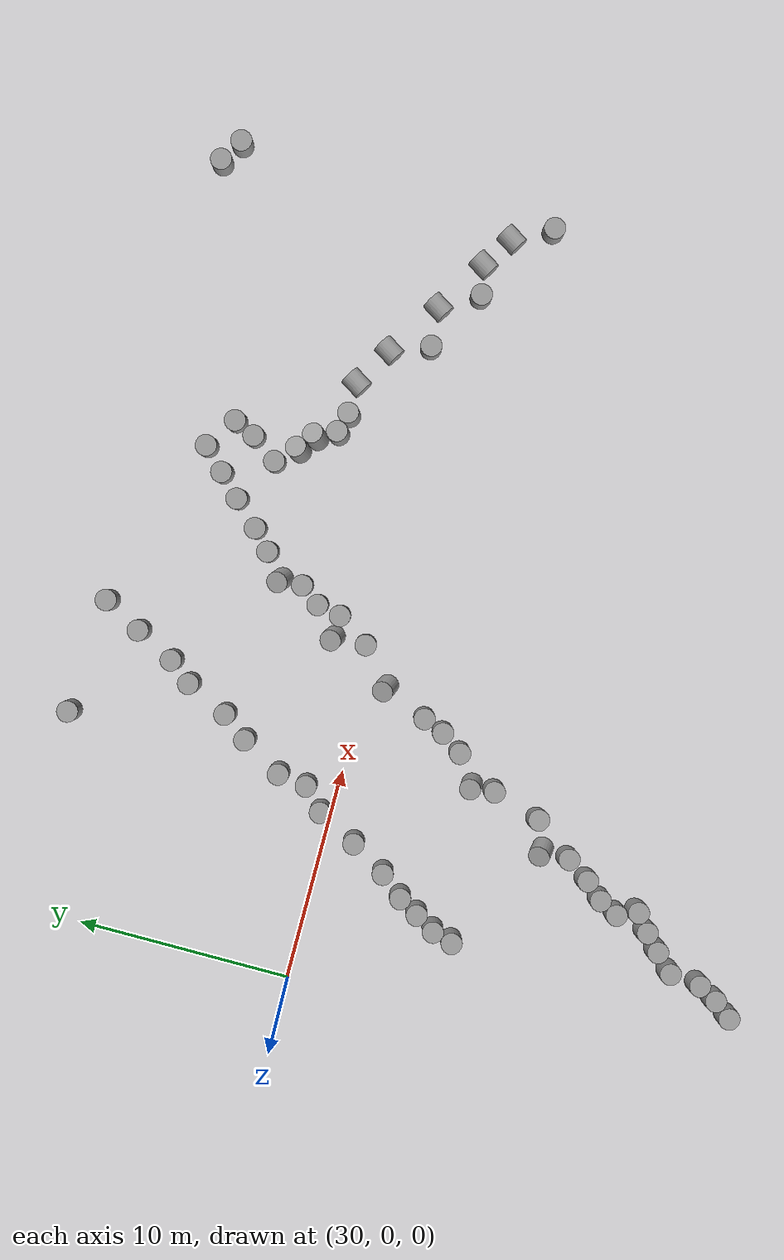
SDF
<sdf version="1.7">
 <world name="default">
  <model name="unit_cylinder_85_clone_244_clone_407">
   <pose>65.9083 12.7491 0.487016 0.000481 -0.001828 0.001633</pose>
   <link name="link">
    <inertial>
     <mass>1</mass>
     <inertia><ixx>0.145833</ixx><ixy>0</ixy><ixz>0</ixz><iyy>0.145833</iyy><iyz>0</iyz><izz>0.125</izz></inertia>
    </inertial>
    <collision name="collision">
     <geometry><cylinder><radius>0.5</radius><length>1</length></cylinder></geometry>
    </collision>
    <visual name="visual">
     <geometry><cylinder><radius>0.5</radius><length>1</length></cylinder></geometry>
     <material>
      <script><name>Gazebo/Grey</name><uri>file://media/materials/scripts/gazebo.material</uri></script>
     </material>
    </visual>
   </link>
  </model>
  <model name="unit_cylinder_85_clone_244_clone_408">
   <pose>66.9709 12.0697 0.483868 -0.001847 0.002099 -0.006346</pose>
   <link name="link">
    <inertial>
     <mass>1</mass>
     <inertia><ixx>0.145833</ixx><ixy>0</ixy><ixz>0</ixz><iyy>0.145833</iyy><iyz>0</iyz><izz>0.125</izz></inertia>
    </inertial>
    <collision name="collision">
     <geometry><cylinder><radius>0.5</radius><length>1</length></cylinder></geometry>
    </collision>
    <visual name="visual">
     <geometry><cylinder><radius>0.5</radius><length>1</length></cylinder></geometry>
     <material>
      <script><name>Gazebo/Grey</name><uri>file://media/materials/scripts/gazebo.material</uri></script>
     </material>
    </visual>
   </link>
  </model>
  <model name="unit_cylinder_85_clone_244_clone_454">
   <pose>47.9038 4.05048 0.452221 0.003339 -9.4e-05 0.005321</pose>
   <link name="link">
    <inertial>
     <mass>1</mass>
     <inertia><ixx>0.145833</ixx><ixy>0</ixy><ixz>0</ixz><iyy>0.145833</iyy><iyz>0</iyz><izz>0.125</izz></inertia>
    </inertial>
    <collision name="collision">
     <geometry><cylinder><radius>0.5</radius><length>1</length></cylinder></geometry>
    </collision>
    <visual name="visual">
     <geometry><cylinder><radius>0.5</radius><length>1</length></cylinder></geometry>
     <material>
      <script><name>Gazebo/Grey</name><uri>file://media/materials/scripts/gazebo.material</uri></script>
     </material>
    </visual>
   </link>
  </model>
  <model name="unit_cylinder_85_clone_244_clone_455">
   <pose>47.8735 5.1312 0.382959 -0.164141 -0.279852 -0.005992</pose>
   <link name="link">
    <inertial>
     <mass>1</mass>
     <inertia><ixx>0.145833</ixx><ixy>0</ixy><ixz>0</ixz><iyy>0.145833</iyy><iyz>0</iyz><izz>0.125</izz></inertia>
    </inertial>
    <collision name="collision">
     <geometry><cylinder><radius>0.5</radius><length>1</length></cylinder></geometry>
    </collision>
    <visual name="visual">
     <geometry><cylinder><radius>0.5</radius><length>1</length></cylinder></geometry>
     <material>
      <script><name>Gazebo/Grey</name><uri>file://media/materials/scripts/gazebo.material</uri></script>
     </material>
    </visual>
   </link>
  </model>
  <model name="unit_cylinder_85_clone_244_clone_456">
   <pose>48.9968 6.0021 0.45274 -0.003399 -0.00559 0.000164</pose>
   <link name="link">
    <inertial>
     <mass>1</mass>
     <inertia><ixx>0.145833</ixx><ixy>0</ixy><ixz>0</ixz><iyy>0.145833</iyy><iyz>0</iyz><izz>0.125</izz></inertia>
    </inertial>
    <collision name="collision">
     <geometry><cylinder><radius>0.5</radius><length>1</length></cylinder></geometry>
    </collision>
    <visual name="visual">
     <geometry><cylinder><radius>0.5</radius><length>1</length></cylinder></geometry>
     <material>
      <script><name>Gazebo/Grey</name><uri>file://media/materials/scripts/gazebo.material</uri></script>
     </material>
    </visual>
   </link>
  </model>
  <model name="unit_cylinder_85_clone_244_clone_457">
   <pose>49.8926 6.83286 0.455228 -0.00395 -0.006941 -0.003318</pose>
   <link name="link">
    <inertial>
     <mass>1</mass>
     <inertia><ixx>0.145833</ixx><ixy>0</ixy><ixz>0</ixz><iyy>0.145833</iyy><iyz>0</iyz><izz>0.125</izz></inertia>
    </inertial>
    <collision name="collision">
     <geometry><cylinder><radius>0.5</radius><length>1</length></cylinder></geometry>
    </collision>
    <visual name="visual">
     <geometry><cylinder><radius>0.5</radius><length>1</length></cylinder></geometry>
     <material>
      <script><name>Gazebo/Grey</name><uri>file://media/materials/scripts/gazebo.material</uri></script>
     </material>
    </visual>
   </link>
  </model>
  <model name="unit_cylinder_85_clone_244_clone_458">
   <pose>50.9948 8.00276 0.458138 -0.004375 -0.007622 0.000537</pose>
   <link name="link">
    <inertial>
     <mass>1</mass>
     <inertia><ixx>0.145833</ixx><ixy>0</ixy><ixz>0</ixz><iyy>0.145833</iyy><iyz>0</iyz><izz>0.125</izz></inertia>
    </inertial>
    <collision name="collision">
     <geometry><cylinder><radius>0.5</radius><length>1</length></cylinder></geometry>
    </collision>
    <visual name="visual">
     <geometry><cylinder><radius>0.5</radius><length>1</length></cylinder></geometry>
     <material>
      <script><name>Gazebo/Grey</name><uri>file://media/materials/scripts/gazebo.material</uri></script>
     </material>
    </visual>
   </link>
  </model>
  <model name="unit_cylinder_85_clone_244_clone_459">
   <pose>51.9946 9.00133 0.461972 -0.002354 -0.007167 0.001035</pose>
   <link name="link">
    <inertial>
     <mass>1</mass>
     <inertia><ixx>0.145833</ixx><ixy>0</ixy><ixz>0</ixz><iyy>0.145833</iyy><iyz>0</iyz><izz>0.125</izz></inertia>
    </inertial>
    <collision name="collision">
     <geometry><cylinder><radius>0.5</radius><length>1</length></cylinder></geometry>
    </collision>
    <visual name="visual">
     <geometry><cylinder><radius>0.5</radius><length>1</length></cylinder></geometry>
     <material>
      <script><name>Gazebo/Grey</name><uri>file://media/materials/scripts/gazebo.material</uri></script>
     </material>
    </visual>
   </link>
  </model>
  <model name="unit_cylinder_85_clone_244_clone_460">
   <pose>52.9971 9.9992 0.466906 0.001811 -0.00526 0.000443</pose>
   <link name="link">
    <inertial>
     <mass>1</mass>
     <inertia><ixx>0.145833</ixx><ixy>0</ixy><ixz>0</ixz><iyy>0.145833</iyy><iyz>0</iyz><izz>0.125</izz></inertia>
    </inertial>
    <collision name="collision">
     <geometry><cylinder><radius>0.5</radius><length>1</length></cylinder></geometry>
    </collision>
    <visual name="visual">
     <geometry><cylinder><radius>0.5</radius><length>1</length></cylinder></geometry>
     <material>
      <script><name>Gazebo/Grey</name><uri>file://media/materials/scripts/gazebo.material</uri></script>
     </material>
    </visual>
   </link>
  </model>
  <model name="unit_cylinder_85_clone_244_clone_461">
   <pose>54.4584 9.00276 0.478846 -0.004645 -0.007311 0.000438</pose>
   <link name="link">
    <inertial>
     <mass>1</mass>
     <inertia><ixx>0.145833</ixx><ixy>0</ixy><ixz>0</ixz><iyy>0.145833</iyy><iyz>0</iyz><izz>0.125</izz></inertia>
    </inertial>
    <collision name="collision">
     <geometry><cylinder><radius>0.5</radius><length>1</length></cylinder></geometry>
    </collision>
    <visual name="visual">
     <geometry><cylinder><radius>0.5</radius><length>1</length></cylinder></geometry>
     <material>
      <script><name>Gazebo/Grey</name><uri>file://media/materials/scripts/gazebo.material</uri></script>
     </material>
    </visual>
   </link>
  </model>
  <model name="unit_cylinder_85_clone_244_clone_462">
   <pose>53.9957 8.00276 0.480105 -0.004646 -0.00731 0.000452</pose>
   <link name="link">
    <inertial>
     <mass>1</mass>
     <inertia><ixx>0.145833</ixx><ixy>0</ixy><ixz>0</ixz><iyy>0.145833</iyy><iyz>0</iyz><izz>0.125</izz></inertia>
    </inertial>
    <collision name="collision">
     <geometry><cylinder><radius>0.5</radius><length>1</length></cylinder></geometry>
    </collision>
    <visual name="visual">
     <geometry><cylinder><radius>0.5</radius><length>1</length></cylinder></geometry>
     <material>
      <script><name>Gazebo/Grey</name><uri>file://media/materials/scripts/gazebo.material</uri></script>
     </material>
    </visual>
   </link>
  </model>
  <model name="unit_cylinder_85_clone_244_clone_463">
   <pose>53.1079 6.77764 0.479298 -0.004644 -0.007309 0.000466</pose>
   <link name="link">
    <inertial>
     <mass>1</mass>
     <inertia><ixx>0.145833</ixx><ixy>0</ixy><ixz>0</ixz><iyy>0.145833</iyy><iyz>0</iyz><izz>0.125</izz></inertia>
    </inertial>
    <collision name="collision">
     <geometry><cylinder><radius>0.5</radius><length>1</length></cylinder></geometry>
    </collision>
    <visual name="visual">
     <geometry><cylinder><radius>0.5</radius><length>1</length></cylinder></geometry>
     <material>
      <script><name>Gazebo/Grey</name><uri>file://media/materials/scripts/gazebo.material</uri></script>
     </material>
    </visual>
   </link>
  </model>
  <model name="unit_cylinder_85_clone_244_clone_464">
   <pose>53.9431 5.88053 0.37976 -0.269112 0.162411 -0.013311</pose>
   <link name="link">
    <inertial>
     <mass>1</mass>
     <inertia><ixx>0.145833</ixx><ixy>0</ixy><ixz>0</ixz><iyy>0.145833</iyy><iyz>0</iyz><izz>0.125</izz></inertia>
    </inertial>
    <collision name="collision">
     <geometry><cylinder><radius>0.5</radius><length>1</length></cylinder></geometry>
    </collision>
    <visual name="visual">
     <geometry><cylinder><radius>0.5</radius><length>1</length></cylinder></geometry>
     <material>
      <script><name>Gazebo/Grey</name><uri>file://media/materials/scripts/gazebo.material</uri></script>
     </material>
    </visual>
   </link>
  </model>
  <model name="unit_cylinder_85_clone_244_clone_465">
   <pose>54.7278 5.26066 0.400099 -0.286862 0.254443 0.140619</pose>
   <link name="link">
    <inertial>
     <mass>1</mass>
     <inertia><ixx>0.145833</ixx><ixy>0</ixy><ixz>0</ixz><iyy>0.145833</iyy><iyz>0</iyz><izz>0.125</izz></inertia>
    </inertial>
    <collision name="collision">
     <geometry><cylinder><radius>0.5</radius><length>1</length></cylinder></geometry>
    </collision>
    <visual name="visual">
     <geometry><cylinder><radius>0.5</radius><length>1</length></cylinder></geometry>
     <material>
      <script><name>Gazebo/Grey</name><uri>file://media/materials/scripts/gazebo.material</uri></script>
     </material>
    </visual>
   </link>
  </model>
  <model name="unit_cylinder_85_clone_244_clone_466">
   <pose>55.1525 4.29108 0.516773 -0.077315 0.091068 0.288524</pose>
   <link name="link">
    <inertial>
     <mass>1</mass>
     <inertia><ixx>0.145833</ixx><ixy>0</ixy><ixz>0</ixz><iyy>0.145833</iyy><iyz>0</iyz><izz>0.125</izz></inertia>
    </inertial>
    <collision name="collision">
     <geometry><cylinder><radius>0.5</radius><length>1</length></cylinder></geometry>
    </collision>
    <visual name="visual">
     <geometry><cylinder><radius>0.5</radius><length>1</length></cylinder></geometry>
     <material>
      <script><name>Gazebo/Grey</name><uri>file://media/materials/scripts/gazebo.material</uri></script>
     </material>
    </visual>
   </link>
  </model>
  <model name="unit_cylinder_85_clone_244_clone_467">
   <pose>56.114 4.01838 0.481314 -0.098125 0.068091 0.02808</pose>
   <link name="link">
    <inertial>
     <mass>1</mass>
     <inertia><ixx>0.145833</ixx><ixy>0</ixy><ixz>0</ixz><iyy>0.145833</iyy><iyz>0</iyz><izz>0.125</izz></inertia>
    </inertial>
    <collision name="collision">
     <geometry><cylinder><radius>0.5</radius><length>1</length></cylinder></geometry>
    </collision>
    <visual name="visual">
     <geometry><cylinder><radius>0.5</radius><length>1</length></cylinder></geometry>
     <material>
      <script><name>Gazebo/Grey</name><uri>file://media/materials/scripts/gazebo.material</uri></script>
     </material>
    </visual>
   </link>
  </model>
  <model name="unit_cylinder_85_clone_244_clone_468">
   <pose>57.6697 4.0778 0.25 -1.5708 0.565712 -0.561488</pose>
   <link name="link">
    <inertial>
     <mass>1</mass>
     <inertia><ixx>0.145833</ixx><ixy>0</ixy><ixz>0</ixz><iyy>0.145833</iyy><iyz>0</iyz><izz>0.125</izz></inertia>
    </inertial>
    <collision name="collision">
     <geometry><cylinder><radius>0.5</radius><length>1</length></cylinder></geometry>
    </collision>
    <visual name="visual">
     <geometry><cylinder><radius>0.5</radius><length>1</length></cylinder></geometry>
     <material>
      <script><name>Gazebo/Grey</name><uri>file://media/materials/scripts/gazebo.material</uri></script>
     </material>
    </visual>
   </link>
  </model>
  <model name="unit_cylinder_85_clone_244_clone_474">
   <pose>44.907 12.6078 0.457132 0.00677 0.009632 -0.001242</pose>
   <link name="link">
    <inertial>
     <mass>1</mass>
     <inertia><ixx>0.145833</ixx><ixy>0</ixy><ixz>0</ixz><iyy>0.145833</iyy><iyz>0</iyz><izz>0.125</izz></inertia>
    </inertial>
    <collision name="collision">
     <geometry><cylinder><radius>0.5</radius><length>1</length></cylinder></geometry>
    </collision>
    <visual name="visual">
     <geometry><cylinder><radius>0.5</radius><length>1</length></cylinder></geometry>
     <material>
      <script><name>Gazebo/Grey</name><uri>file://media/materials/scripts/gazebo.material</uri></script>
     </material>
    </visual>
   </link>
  </model>
  <model name="unit_cylinder_85_clone_244_clone_475">
   <pose>59.5076 3.00165 0.25 -1.5708 0.56109 -0.556163</pose>
   <link name="link">
    <inertial>
     <mass>1</mass>
     <inertia><ixx>0.145833</ixx><ixy>0</ixy><ixz>0</ixz><iyy>0.145833</iyy><iyz>0</iyz><izz>0.125</izz></inertia>
    </inertial>
    <collision name="collision">
     <geometry><cylinder><radius>0.5</radius><length>1</length></cylinder></geometry>
    </collision>
    <visual name="visual">
     <geometry><cylinder><radius>0.5</radius><length>1</length></cylinder></geometry>
     <material>
      <script><name>Gazebo/Grey</name><uri>file://media/materials/scripts/gazebo.material</uri></script>
     </material>
    </visual>
   </link>
  </model>
  <model name="unit_cylinder_85_clone_244_clone_476">
   <pose>60.1134 1.16187 0.474576 0.000852 0.000466 -0.024107</pose>
   <link name="link">
    <inertial>
     <mass>1</mass>
     <inertia><ixx>0.145833</ixx><ixy>0</ixy><ixz>0</ixz><iyy>0.145833</iyy><iyz>0</iyz><izz>0.125</izz></inertia>
    </inertial>
    <collision name="collision">
     <geometry><cylinder><radius>0.5</radius><length>1</length></cylinder></geometry>
    </collision>
    <visual name="visual">
     <geometry><cylinder><radius>0.5</radius><length>1</length></cylinder></geometry>
     <material>
      <script><name>Gazebo/Grey</name><uri>file://media/materials/scripts/gazebo.material</uri></script>
     </material>
    </visual>
   </link>
  </model>
  <model name="unit_cylinder_85_clone_244_clone_477">
   <pose>62.0484 1.31526 0.25 -1.5708 0.562658 -0.559348</pose>
   <link name="link">
    <inertial>
     <mass>1</mass>
     <inertia><ixx>0.145833</ixx><ixy>0</ixy><ixz>0</ixz><iyy>0.145833</iyy><iyz>0</iyz><izz>0.125</izz></inertia>
    </inertial>
    <collision name="collision">
     <geometry><cylinder><radius>0.5</radius><length>1</length></cylinder></geometry>
    </collision>
    <visual name="visual">
     <geometry><cylinder><radius>0.5</radius><length>1</length></cylinder></geometry>
     <material>
      <script><name>Gazebo/Grey</name><uri>file://media/materials/scripts/gazebo.material</uri></script>
     </material>
    </visual>
   </link>
  </model>
  <model name="unit_cylinder_85_clone_244_clone_478">
   <pose>63.0003 -0.461854 0.471903 0.000855 0.000439 0.00044</pose>
   <link name="link">
    <inertial>
     <mass>1</mass>
     <inertia><ixx>0.145833</ixx><ixy>0</ixy><ixz>0</ixz><iyy>0.145833</iyy><iyz>0</iyz><izz>0.125</izz></inertia>
    </inertial>
    <collision name="collision">
     <geometry><cylinder><radius>0.5</radius><length>1</length></cylinder></geometry>
    </collision>
    <visual name="visual">
     <geometry><cylinder><radius>0.5</radius><length>1</length></cylinder></geometry>
     <material>
      <script><name>Gazebo/Grey</name><uri>file://media/materials/scripts/gazebo.material</uri></script>
     </material>
    </visual>
   </link>
  </model>
  <model name="unit_cylinder_85_clone_244_clone_479">
   <pose>64.5029 -0.198859 0.25 -1.5708 0.562659 -0.559427</pose>
   <link name="link">
    <inertial>
     <mass>1</mass>
     <inertia><ixx>0.145833</ixx><ixy>0</ixy><ixz>0</ixz><iyy>0.145833</iyy><iyz>0</iyz><izz>0.125</izz></inertia>
    </inertial>
    <collision name="collision">
     <geometry><cylinder><radius>0.5</radius><length>1</length></cylinder></geometry>
    </collision>
    <visual name="visual">
     <geometry><cylinder><radius>0.5</radius><length>1</length></cylinder></geometry>
     <material>
      <script><name>Gazebo/Grey</name><uri>file://media/materials/scripts/gazebo.material</uri></script>
     </material>
    </visual>
   </link>
  </model>
  <model name="unit_cylinder_85_clone_244_clone_480">
   <pose>65.9843 -1.1571 0.25 -1.5708 0.562156 -0.558519</pose>
   <link name="link">
    <inertial>
     <mass>1</mass>
     <inertia><ixx>0.145833</ixx><ixy>0</ixy><ixz>0</ixz><iyy>0.145833</iyy><iyz>0</iyz><izz>0.125</izz></inertia>
    </inertial>
    <collision name="collision">
     <geometry><cylinder><radius>0.5</radius><length>1</length></cylinder></geometry>
    </collision>
    <visual name="visual">
     <geometry><cylinder><radius>0.5</radius><length>1</length></cylinder></geometry>
     <material>
      <script><name>Gazebo/Grey</name><uri>file://media/materials/scripts/gazebo.material</uri></script>
     </material>
    </visual>
   </link>
  </model>
  <model name="unit_cylinder_85_clone_244_clone_481">
   <pose>66.8227 -2.92542 0.468089 0.000859 0.000442 0.002127</pose>
   <link name="link">
    <inertial>
     <mass>1</mass>
     <inertia><ixx>0.145833</ixx><ixy>0</ixy><ixz>0</ixz><iyy>0.145833</iyy><iyz>0</iyz><izz>0.125</izz></inertia>
    </inertial>
    <collision name="collision">
     <geometry><cylinder><radius>0.5</radius><length>1</length></cylinder></geometry>
    </collision>
    <visual name="visual">
     <geometry><cylinder><radius>0.5</radius><length>1</length></cylinder></geometry>
     <material>
      <script><name>Gazebo/Grey</name><uri>file://media/materials/scripts/gazebo.material</uri></script>
     </material>
    </visual>
   </link>
  </model>
  <model name="unit_cylinder_85_clone_244_clone_1080">
   <pose>40.2632 -9.29285 0.475792 0.023351 0.04761 0.001771</pose>
   <link name="link">
    <inertial>
     <mass>1</mass>
     <inertia><ixx>0.145833</ixx><ixy>0</ixy><ixz>0</ixz><iyy>0.145833</iyy><iyz>0</iyz><izz>0.125</izz></inertia>
    </inertial>
    <collision name="collision">
     <geometry><cylinder><radius>0.5</radius><length>1</length></cylinder></geometry>
    </collision>
    <visual name="visual">
     <geometry><cylinder><radius>0.5</radius><length>1</length></cylinder></geometry>
     <material>
      <script><name>Gazebo/Grey</name><uri>file://media/materials/scripts/gazebo.material</uri></script>
     </material>
    </visual>
   </link>
  </model>
  <model name="unit_cylinder_85_clone_244_clone_1081">
   <pose>38.8842 -11.1155 0.486323 0.017733 0.027566 0.000849</pose>
   <link name="link">
    <inertial>
     <mass>1</mass>
     <inertia><ixx>0.145833</ixx><ixy>0</ixy><ixz>0</ixz><iyy>0.145833</iyy><iyz>0</iyz><izz>0.125</izz></inertia>
    </inertial>
    <collision name="collision">
     <geometry><cylinder><radius>0.5</radius><length>1</length></cylinder></geometry>
    </collision>
    <visual name="visual">
     <geometry><cylinder><radius>0.5</radius><length>1</length></cylinder></geometry>
     <material>
      <script><name>Gazebo/Grey</name><uri>file://media/materials/scripts/gazebo.material</uri></script>
     </material>
    </visual>
   </link>
  </model>
  <model name="unit_cylinder_85_clone_244_clone_1082">
   <pose>38.1433 -12.1995 0.487555 0.017732 0.02757 0.000865</pose>
   <link name="link">
    <inertial>
     <mass>1</mass>
     <inertia><ixx>0.145833</ixx><ixy>0</ixy><ixz>0</ixz><iyy>0.145833</iyy><iyz>0</iyz><izz>0.125</izz></inertia>
    </inertial>
    <collision name="collision">
     <geometry><cylinder><radius>0.5</radius><length>1</length></cylinder></geometry>
    </collision>
    <visual name="visual">
     <geometry><cylinder><radius>0.5</radius><length>1</length></cylinder></geometry>
     <material>
      <script><name>Gazebo/Grey</name><uri>file://media/materials/scripts/gazebo.material</uri></script>
     </material>
    </visual>
   </link>
  </model>
  <model name="unit_cylinder_85_clone_244_clone_1083">
   <pose>37.4378 -13.0048 0.488001 0.002602 -0.000362 -0.00181</pose>
   <link name="link">
    <inertial>
     <mass>1</mass>
     <inertia><ixx>0.145833</ixx><ixy>0</ixy><ixz>0</ixz><iyy>0.145833</iyy><iyz>0</iyz><izz>0.125</izz></inertia>
    </inertial>
    <collision name="collision">
     <geometry><cylinder><radius>0.5</radius><length>1</length></cylinder></geometry>
    </collision>
    <visual name="visual">
     <geometry><cylinder><radius>0.5</radius><length>1</length></cylinder></geometry>
     <material>
      <script><name>Gazebo/Grey</name><uri>file://media/materials/scripts/gazebo.material</uri></script>
     </material>
    </visual>
   </link>
  </model>
  <model name="unit_cylinder_85_clone_244_clone_1084">
   <pose>36.9782 -13.8929 0.485522 0.002557 -0.000604 0.091987</pose>
   <link name="link">
    <inertial>
     <mass>1</mass>
     <inertia><ixx>0.145833</ixx><ixy>0</ixy><ixz>0</ixz><iyy>0.145833</iyy><iyz>0</iyz><izz>0.125</izz></inertia>
    </inertial>
    <collision name="collision">
     <geometry><cylinder><radius>0.5</radius><length>1</length></cylinder></geometry>
    </collision>
    <visual name="visual">
     <geometry><cylinder><radius>0.5</radius><length>1</length></cylinder></geometry>
     <material>
      <script><name>Gazebo/Grey</name><uri>file://media/materials/scripts/gazebo.material</uri></script>
     </material>
    </visual>
   </link>
  </model>
  <model name="unit_cylinder_85_clone_244_clone_1085">
   <pose>37.3354 -14.8531 0.4645 0.017261 0.023847 0.056393</pose>
   <link name="link">
    <inertial>
     <mass>1</mass>
     <inertia><ixx>0.145833</ixx><ixy>0</ixy><ixz>0</ixz><iyy>0.145833</iyy><iyz>0</iyz><izz>0.125</izz></inertia>
    </inertial>
    <collision name="collision">
     <geometry><cylinder><radius>0.5</radius><length>1</length></cylinder></geometry>
    </collision>
    <visual name="visual">
     <geometry><cylinder><radius>0.5</radius><length>1</length></cylinder></geometry>
     <material>
      <script><name>Gazebo/Grey</name><uri>file://media/materials/scripts/gazebo.material</uri></script>
     </material>
    </visual>
   </link>
  </model>
  <model name="unit_cylinder_85_clone_244_clone_1086">
   <pose>36.5434 -15.4775 0.473621 0.014527 0.029387 -0.111619</pose>
   <link name="link">
    <inertial>
     <mass>1</mass>
     <inertia><ixx>0.145833</ixx><ixy>0</ixy><ixz>0</ixz><iyy>0.145833</iyy><iyz>0</iyz><izz>0.125</izz></inertia>
    </inertial>
    <collision name="collision">
     <geometry><cylinder><radius>0.5</radius><length>1</length></cylinder></geometry>
    </collision>
    <visual name="visual">
     <geometry><cylinder><radius>0.5</radius><length>1</length></cylinder></geometry>
     <material>
      <script><name>Gazebo/Grey</name><uri>file://media/materials/scripts/gazebo.material</uri></script>
     </material>
    </visual>
   </link>
  </model>
  <model name="unit_cylinder_85_clone_244_clone_1087">
   <pose>35.8153 -16.1767 0.479152 0.002587 -0.000484 0.043993</pose>
   <link name="link">
    <inertial>
     <mass>1</mass>
     <inertia><ixx>0.145833</ixx><ixy>0</ixy><ixz>0</ixz><iyy>0.145833</iyy><iyz>0</iyz><izz>0.125</izz></inertia>
    </inertial>
    <collision name="collision">
     <geometry><cylinder><radius>0.5</radius><length>1</length></cylinder></geometry>
    </collision>
    <visual name="visual">
     <geometry><cylinder><radius>0.5</radius><length>1</length></cylinder></geometry>
     <material>
      <script><name>Gazebo/Grey</name><uri>file://media/materials/scripts/gazebo.material</uri></script>
     </material>
    </visual>
   </link>
  </model>
  <model name="unit_cylinder_85_clone_244_clone_1088">
   <pose>35.0001 -17.0015 0.476711 0.002591 -0.000384 0.000468</pose>
   <link name="link">
    <inertial>
     <mass>1</mass>
     <inertia><ixx>0.145833</ixx><ixy>0</ixy><ixz>0</ixz><iyy>0.145833</iyy><iyz>0</iyz><izz>0.125</izz></inertia>
    </inertial>
    <collision name="collision">
     <geometry><cylinder><radius>0.5</radius><length>1</length></cylinder></geometry>
    </collision>
    <visual name="visual">
     <geometry><cylinder><radius>0.5</radius><length>1</length></cylinder></geometry>
     <material>
      <script><name>Gazebo/Grey</name><uri>file://media/materials/scripts/gazebo.material</uri></script>
     </material>
    </visual>
   </link>
  </model>
  <model name="unit_cylinder_85_clone_244_clone_1089">
   <pose>34.8078 -18.4486 0.468875 0.017956 0.027423 0.008938</pose>
   <link name="link">
    <inertial>
     <mass>1</mass>
     <inertia><ixx>0.145833</ixx><ixy>0</ixy><ixz>0</ixz><iyy>0.145833</iyy><iyz>0</iyz><izz>0.125</izz></inertia>
    </inertial>
    <collision name="collision">
     <geometry><cylinder><radius>0.5</radius><length>1</length></cylinder></geometry>
    </collision>
    <visual name="visual">
     <geometry><cylinder><radius>0.5</radius><length>1</length></cylinder></geometry>
     <material>
      <script><name>Gazebo/Grey</name><uri>file://media/materials/scripts/gazebo.material</uri></script>
     </material>
    </visual>
   </link>
  </model>
  <model name="unit_cylinder_85_clone_244_clone_1090">
   <pose>34.3214 -19.3329 0.466628 0.019374 0.026437 0.061742</pose>
   <link name="link">
    <inertial>
     <mass>1</mass>
     <inertia><ixx>0.145833</ixx><ixy>0</ixy><ixz>0</ixz><iyy>0.145833</iyy><iyz>0</iyz><izz>0.125</izz></inertia>
    </inertial>
    <collision name="collision">
     <geometry><cylinder><radius>0.5</radius><length>1</length></cylinder></geometry>
    </collision>
    <visual name="visual">
     <geometry><cylinder><radius>0.5</radius><length>1</length></cylinder></geometry>
     <material>
      <script><name>Gazebo/Grey</name><uri>file://media/materials/scripts/gazebo.material</uri></script>
     </material>
    </visual>
   </link>
  </model>
  <model name="unit_cylinder_85_clone_244_clone_1091">
   <pose>33.7063 -20.1398 0.468057 0.002627 -0.000191 -0.055756</pose>
   <link name="link">
    <inertial>
     <mass>1</mass>
     <inertia><ixx>0.145833</ixx><ixy>0</ixy><ixz>0</ixz><iyy>0.145833</iyy><iyz>0</iyz><izz>0.125</izz></inertia>
    </inertial>
    <collision name="collision">
     <geometry><cylinder><radius>0.5</radius><length>1</length></cylinder></geometry>
    </collision>
    <visual name="visual">
     <geometry><cylinder><radius>0.5</radius><length>1</length></cylinder></geometry>
     <material>
      <script><name>Gazebo/Grey</name><uri>file://media/materials/scripts/gazebo.material</uri></script>
     </material>
    </visual>
   </link>
  </model>
  <model name="unit_cylinder_85_clone_244_clone_1091">
   <pose>33.7063 -20.1398 0.468057 0.002627 -0.000191 -0.055756</pose>
   <link name="link">
    <inertial>
     <mass>1</mass>
     <inertia><ixx>0.145833</ixx><ixy>0</ixy><ixz>0</ixz><iyy>0.145833</iyy><iyz>0</iyz><izz>0.125</izz></inertia>
    </inertial>
    <collision name="collision">
     <geometry><cylinder><radius>0.5</radius><length>1</length></cylinder></geometry>
    </collision>
    <visual name="visual">
     <geometry><cylinder><radius>0.5</radius><length>1</length></cylinder></geometry>
     <material>
      <script><name>Gazebo/Grey</name><uri>file://media/materials/scripts/gazebo.material</uri></script>
     </material>
    </visual>
   </link>
  </model>
  <model name="unit_cylinder_85_clone_244_clone_1106">
   <pose>38.8351 -9.85135 0.414549 -0.27302 -0.345187 0.152496</pose>
   <link name="link">
    <inertial>
     <mass>1</mass>
     <inertia><ixx>0.145833</ixx><ixy>0</ixy><ixz>0</ixz><iyy>0.145833</iyy><iyz>0</iyz><izz>0.125</izz></inertia>
    </inertial>
    <collision name="collision">
     <geometry><cylinder><radius>0.5</radius><length>1</length></cylinder></geometry>
    </collision>
    <visual name="visual">
     <geometry><cylinder><radius>0.5</radius><length>1</length></cylinder></geometry>
     <material>
      <script><name>Gazebo/Grey</name><uri>file://media/materials/scripts/gazebo.material</uri></script>
     </material>
    </visual>
   </link>
  </model>
  <model name="unit_cylinder_85_clone_244_clone_1107">
   <pose>41.001 -7.00061 0.451141 0.00117 0.001922 0.000501</pose>
   <link name="link">
    <inertial>
     <mass>1</mass>
     <inertia><ixx>0.145833</ixx><ixy>0</ixy><ixz>0</ixz><iyy>0.145833</iyy><iyz>0</iyz><izz>0.125</izz></inertia>
    </inertial>
    <collision name="collision">
     <geometry><cylinder><radius>0.5</radius><length>1</length></cylinder></geometry>
    </collision>
    <visual name="visual">
     <geometry><cylinder><radius>0.5</radius><length>1</length></cylinder></geometry>
     <material>
      <script><name>Gazebo/Grey</name><uri>file://media/materials/scripts/gazebo.material</uri></script>
     </material>
    </visual>
   </link>
  </model>
  <model name="unit_cylinder_85_clone_244_clone_1108">
   <pose>40.9135 -5.93648 0.351098 -0.125856 -0.193939 0.034779</pose>
   <link name="link">
    <inertial>
     <mass>1</mass>
     <inertia><ixx>0.145833</ixx><ixy>0</ixy><ixz>0</ixz><iyy>0.145833</iyy><iyz>0</iyz><izz>0.125</izz></inertia>
    </inertial>
    <collision name="collision">
     <geometry><cylinder><radius>0.5</radius><length>1</length></cylinder></geometry>
    </collision>
    <visual name="visual">
     <geometry><cylinder><radius>0.5</radius><length>1</length></cylinder></geometry>
     <material>
      <script><name>Gazebo/Grey</name><uri>file://media/materials/scripts/gazebo.material</uri></script>
     </material>
    </visual>
   </link>
  </model>
  <model name="unit_cylinder_85_clone_244_clone_1109">
   <pose>42.3027 -4.99729 0.451009 0.001063 0.001721 0.000446</pose>
   <link name="link">
    <inertial>
     <mass>1</mass>
     <inertia><ixx>0.145833</ixx><ixy>0</ixy><ixz>0</ixz><iyy>0.145833</iyy><iyz>0</iyz><izz>0.125</izz></inertia>
    </inertial>
    <collision name="collision">
     <geometry><cylinder><radius>0.5</radius><length>1</length></cylinder></geometry>
    </collision>
    <visual name="visual">
     <geometry><cylinder><radius>0.5</radius><length>1</length></cylinder></geometry>
     <material>
      <script><name>Gazebo/Grey</name><uri>file://media/materials/scripts/gazebo.material</uri></script>
     </material>
    </visual>
   </link>
  </model>
  <model name="unit_cylinder_85_clone_244_clone_1110">
   <pose>43.0008 -4.00045 0.450887 0.000921 0.001529 0.000428</pose>
   <link name="link">
    <inertial>
     <mass>1</mass>
     <inertia><ixx>0.145833</ixx><ixy>0</ixy><ixz>0</ixz><iyy>0.145833</iyy><iyz>0</iyz><izz>0.125</izz></inertia>
    </inertial>
    <collision name="collision">
     <geometry><cylinder><radius>0.5</radius><length>1</length></cylinder></geometry>
    </collision>
    <visual name="visual">
     <geometry><cylinder><radius>0.5</radius><length>1</length></cylinder></geometry>
     <material>
      <script><name>Gazebo/Grey</name><uri>file://media/materials/scripts/gazebo.material</uri></script>
     </material>
    </visual>
   </link>
  </model>
  <model name="unit_cylinder_85_clone_244_clone_1111">
   <pose>43.4196 -3.00061 0.451169 0.001208 0.001959 0.000475</pose>
   <link name="link">
    <inertial>
     <mass>1</mass>
     <inertia><ixx>0.145833</ixx><ixy>0</ixy><ixz>0</ixz><iyy>0.145833</iyy><iyz>0</iyz><izz>0.125</izz></inertia>
    </inertial>
    <collision name="collision">
     <geometry><cylinder><radius>0.5</radius><length>1</length></cylinder></geometry>
    </collision>
    <visual name="visual">
     <geometry><cylinder><radius>0.5</radius><length>1</length></cylinder></geometry>
     <material>
      <script><name>Gazebo/Grey</name><uri>file://media/materials/scripts/gazebo.material</uri></script>
     </material>
    </visual>
   </link>
  </model>
  <model name="unit_cylinder_85_clone_244_clone_1112">
   <pose>44.2966 -0.902207 0.406038 -0.214832 -0.343703 0.028476</pose>
   <link name="link">
    <inertial>
     <mass>1</mass>
     <inertia><ixx>0.145833</ixx><ixy>0</ixy><ixz>0</ixz><iyy>0.145833</iyy><iyz>0</iyz><izz>0.125</izz></inertia>
    </inertial>
    <collision name="collision">
     <geometry><cylinder><radius>0.5</radius><length>1</length></cylinder></geometry>
    </collision>
    <visual name="visual">
     <geometry><cylinder><radius>0.5</radius><length>1</length></cylinder></geometry>
     <material>
      <script><name>Gazebo/Grey</name><uri>file://media/materials/scripts/gazebo.material</uri></script>
     </material>
    </visual>
   </link>
  </model>
  <model name="unit_cylinder_85_clone_244_clone_1113">
   <pose>46.0006 0.499835 0.450672 0.000699 0.00115 0.000449</pose>
   <link name="link">
    <inertial>
     <mass>1</mass>
     <inertia><ixx>0.145833</ixx><ixy>0</ixy><ixz>0</ixz><iyy>0.145833</iyy><iyz>0</iyz><izz>0.125</izz></inertia>
    </inertial>
    <collision name="collision">
     <geometry><cylinder><radius>0.5</radius><length>1</length></cylinder></geometry>
    </collision>
    <visual name="visual">
     <geometry><cylinder><radius>0.5</radius><length>1</length></cylinder></geometry>
     <material>
      <script><name>Gazebo/Grey</name><uri>file://media/materials/scripts/gazebo.material</uri></script>
     </material>
    </visual>
   </link>
  </model>
  <model name="unit_cylinder_85_clone_244_clone_1114">
   <pose>46.9982 2.00317 0.451129 0.000107 0.000191 0.000587</pose>
   <link name="link">
    <inertial>
     <mass>1</mass>
     <inertia><ixx>0.145833</ixx><ixy>0</ixy><ixz>0</ixz><iyy>0.145833</iyy><iyz>0</iyz><izz>0.125</izz></inertia>
    </inertial>
    <collision name="collision">
     <geometry><cylinder><radius>0.5</radius><length>1</length></cylinder></geometry>
    </collision>
    <visual name="visual">
     <geometry><cylinder><radius>0.5</radius><length>1</length></cylinder></geometry>
     <material>
      <script><name>Gazebo/Grey</name><uri>file://media/materials/scripts/gazebo.material</uri></script>
     </material>
    </visual>
   </link>
  </model>
  <model name="unit_cylinder_85_clone_244_clone_1115">
   <pose>47.2124 3.13099 0.451041 0.001088 0.00179 0.000437</pose>
   <link name="link">
    <inertial>
     <mass>1</mass>
     <inertia><ixx>0.145833</ixx><ixy>0</ixy><ixz>0</ixz><iyy>0.145833</iyy><iyz>0</iyz><izz>0.125</izz></inertia>
    </inertial>
    <collision name="collision">
     <geometry><cylinder><radius>0.5</radius><length>1</length></cylinder></geometry>
    </collision>
    <visual name="visual">
     <geometry><cylinder><radius>0.5</radius><length>1</length></cylinder></geometry>
     <material>
      <script><name>Gazebo/Grey</name><uri>file://media/materials/scripts/gazebo.material</uri></script>
     </material>
    </visual>
   </link>
  </model>
  <model name="unit_cylinder_85_clone_244_clone_1116">
   <pose>45.8938 2.06861 0.36406 -0.142234 -0.226249 0.022001</pose>
   <link name="link">
    <inertial>
     <mass>1</mass>
     <inertia><ixx>0.145833</ixx><ixy>0</ixy><ixz>0</ixz><iyy>0.145833</iyy><iyz>0</iyz><izz>0.125</izz></inertia>
    </inertial>
    <collision name="collision">
     <geometry><cylinder><radius>0.5</radius><length>1</length></cylinder></geometry>
    </collision>
    <visual name="visual">
     <geometry><cylinder><radius>0.5</radius><length>1</length></cylinder></geometry>
     <material>
      <script><name>Gazebo/Grey</name><uri>file://media/materials/scripts/gazebo.material</uri></script>
     </material>
    </visual>
   </link>
  </model>
  <model name="unit_cylinder_85_clone_244_clone_1118">
   <pose>33.7439 -6.8896 0.450955 -0.000943 -0.001657 -0.007195</pose>
   <link name="link">
    <inertial>
     <mass>1</mass>
     <inertia><ixx>0.145833</ixx><ixy>0</ixy><ixz>0</ixz><iyy>0.145833</iyy><iyz>0</iyz><izz>0.125</izz></inertia>
    </inertial>
    <collision name="collision">
     <geometry><cylinder><radius>0.5</radius><length>1</length></cylinder></geometry>
    </collision>
    <visual name="visual">
     <geometry><cylinder><radius>0.5</radius><length>1</length></cylinder></geometry>
     <material>
      <script><name>Gazebo/Grey</name><uri>file://media/materials/scripts/gazebo.material</uri></script>
     </material>
    </visual>
   </link>
  </model>
  <model name="unit_cylinder_85_clone_244_clone_1119">
   <pose>34.0215 -5.92889 0.450708 -0.000811 -0.001166 0.000716</pose>
   <link name="link">
    <inertial>
     <mass>1</mass>
     <inertia><ixx>0.145833</ixx><ixy>0</ixy><ixz>0</ixz><iyy>0.145833</iyy><iyz>0</iyz><izz>0.125</izz></inertia>
    </inertial>
    <collision name="collision">
     <geometry><cylinder><radius>0.5</radius><length>1</length></cylinder></geometry>
    </collision>
    <visual name="visual">
     <geometry><cylinder><radius>0.5</radius><length>1</length></cylinder></geometry>
     <material>
      <script><name>Gazebo/Grey</name><uri>file://media/materials/scripts/gazebo.material</uri></script>
     </material>
    </visual>
   </link>
  </model>
  <model name="unit_cylinder_85_clone_244_clone_1120">
   <pose>34.5814 -4.99964 0.450703 -0.000717 -0.001209 0.000525</pose>
   <link name="link">
    <inertial>
     <mass>1</mass>
     <inertia><ixx>0.145833</ixx><ixy>0</ixy><ixz>0</ixz><iyy>0.145833</iyy><iyz>0</iyz><izz>0.125</izz></inertia>
    </inertial>
    <collision name="collision">
     <geometry><cylinder><radius>0.5</radius><length>1</length></cylinder></geometry>
    </collision>
    <visual name="visual">
     <geometry><cylinder><radius>0.5</radius><length>1</length></cylinder></geometry>
     <material>
      <script><name>Gazebo/Grey</name><uri>file://media/materials/scripts/gazebo.material</uri></script>
     </material>
    </visual>
   </link>
  </model>
  <model name="unit_cylinder_85_clone_244_clone_1121">
   <pose>35.119 -4.07027 0.450694 -0.00071 -0.001195 0.000971</pose>
   <link name="link">
    <inertial>
     <mass>1</mass>
     <inertia><ixx>0.145833</ixx><ixy>0</ixy><ixz>0</ixz><iyy>0.145833</iyy><iyz>0</iyz><izz>0.125</izz></inertia>
    </inertial>
    <collision name="collision">
     <geometry><cylinder><radius>0.5</radius><length>1</length></cylinder></geometry>
    </collision>
    <visual name="visual">
     <geometry><cylinder><radius>0.5</radius><length>1</length></cylinder></geometry>
     <material>
      <script><name>Gazebo/Grey</name><uri>file://media/materials/scripts/gazebo.material</uri></script>
     </material>
    </visual>
   </link>
  </model>
  <model name="unit_cylinder_85_clone_244_clone_1122">
   <pose>35.9992 -2.99954 0.450892 -0.000907 -0.001538 0.00052</pose>
   <link name="link">
    <inertial>
     <mass>1</mass>
     <inertia><ixx>0.145833</ixx><ixy>0</ixy><ixz>0</ixz><iyy>0.145833</iyy><iyz>0</iyz><izz>0.125</izz></inertia>
    </inertial>
    <collision name="collision">
     <geometry><cylinder><radius>0.5</radius><length>1</length></cylinder></geometry>
    </collision>
    <visual name="visual">
     <geometry><cylinder><radius>0.5</radius><length>1</length></cylinder></geometry>
     <material>
      <script><name>Gazebo/Grey</name><uri>file://media/materials/scripts/gazebo.material</uri></script>
     </material>
    </visual>
   </link>
  </model>
  <model name="unit_cylinder_85_clone_244_clone_1123">
   <pose>37.0024 -1.33836 0.450912 -0.00093 -0.00157 0.000523</pose>
   <link name="link">
    <inertial>
     <mass>1</mass>
     <inertia><ixx>0.145833</ixx><ixy>0</ixy><ixz>0</ixz><iyy>0.145833</iyy><iyz>0</iyz><izz>0.125</izz></inertia>
    </inertial>
    <collision name="collision">
     <geometry><cylinder><radius>0.5</radius><length>1</length></cylinder></geometry>
    </collision>
    <visual name="visual">
     <geometry><cylinder><radius>0.5</radius><length>1</length></cylinder></geometry>
     <material>
      <script><name>Gazebo/Grey</name><uri>file://media/materials/scripts/gazebo.material</uri></script>
     </material>
    </visual>
   </link>
  </model>
  <model name="unit_cylinder_85_clone_244_clone_1124">
   <pose>37.9993 0.539956 0.450803 -0.00082 -0.001383 0.000514</pose>
   <link name="link">
    <inertial>
     <mass>1</mass>
     <inertia><ixx>0.145833</ixx><ixy>0</ixy><ixz>0</ixz><iyy>0.145833</iyy><iyz>0</iyz><izz>0.125</izz></inertia>
    </inertial>
    <collision name="collision">
     <geometry><cylinder><radius>0.5</radius><length>1</length></cylinder></geometry>
    </collision>
    <visual name="visual">
     <geometry><cylinder><radius>0.5</radius><length>1</length></cylinder></geometry>
     <material>
      <script><name>Gazebo/Grey</name><uri>file://media/materials/scripts/gazebo.material</uri></script>
     </material>
    </visual>
   </link>
  </model>
  <model name="unit_cylinder_85_clone_244_clone_1125">
   <pose>39.0002 1.47724 0.451291 0.000256 0.000429 0.000412</pose>
   <link name="link">
    <inertial>
     <mass>1</mass>
     <inertia><ixx>0.145833</ixx><ixy>0</ixy><ixz>0</ixz><iyy>0.145833</iyy><iyz>0</iyz><izz>0.125</izz></inertia>
    </inertial>
    <collision name="collision">
     <geometry><cylinder><radius>0.5</radius><length>1</length></cylinder></geometry>
    </collision>
    <visual name="visual">
     <geometry><cylinder><radius>0.5</radius><length>1</length></cylinder></geometry>
     <material>
      <script><name>Gazebo/Grey</name><uri>file://media/materials/scripts/gazebo.material</uri></script>
     </material>
    </visual>
   </link>
  </model>
  <model name="unit_cylinder_85_clone_244_clone_1126">
   <pose>39.1988 2.85906 0.450676 -0.000795 -0.001109 0.088813</pose>
   <link name="link">
    <inertial>
     <mass>1</mass>
     <inertia><ixx>0.145833</ixx><ixy>0</ixy><ixz>0</ixz><iyy>0.145833</iyy><iyz>0</iyz><izz>0.125</izz></inertia>
    </inertial>
    <collision name="collision">
     <geometry><cylinder><radius>0.5</radius><length>1</length></cylinder></geometry>
    </collision>
    <visual name="visual">
     <geometry><cylinder><radius>0.5</radius><length>1</length></cylinder></geometry>
     <material>
      <script><name>Gazebo/Grey</name><uri>file://media/materials/scripts/gazebo.material</uri></script>
     </material>
    </visual>
   </link>
  </model>
  <model name="unit_cylinder_85_clone_244_clone_1127">
   <pose>40.318 4.76667 0.450671 -0.000846 -0.001054 0.141564</pose>
   <link name="link">
    <inertial>
     <mass>1</mass>
     <inertia><ixx>0.145833</ixx><ixy>0</ixy><ixz>0</ixz><iyy>0.145833</iyy><iyz>0</iyz><izz>0.125</izz></inertia>
    </inertial>
    <collision name="collision">
     <geometry><cylinder><radius>0.5</radius><length>1</length></cylinder></geometry>
    </collision>
    <visual name="visual">
     <geometry><cylinder><radius>0.5</radius><length>1</length></cylinder></geometry>
     <material>
      <script><name>Gazebo/Grey</name><uri>file://media/materials/scripts/gazebo.material</uri></script>
     </material>
    </visual>
   </link>
  </model>
  <model name="unit_cylinder_85_clone_244_clone_1128">
   <pose>41.2242 5.96031 0.450815 -0.000833 -0.001404 0.000535</pose>
   <link name="link">
    <inertial>
     <mass>1</mass>
     <inertia><ixx>0.145833</ixx><ixy>0</ixy><ixz>0</ixz><iyy>0.145833</iyy><iyz>0</iyz><izz>0.125</izz></inertia>
    </inertial>
    <collision name="collision">
     <geometry><cylinder><radius>0.5</radius><length>1</length></cylinder></geometry>
    </collision>
    <visual name="visual">
     <geometry><cylinder><radius>0.5</radius><length>1</length></cylinder></geometry>
     <material>
      <script><name>Gazebo/Grey</name><uri>file://media/materials/scripts/gazebo.material</uri></script>
     </material>
    </visual>
   </link>
  </model>
  <model name="unit_cylinder_85_clone_244_clone_1129">
   <pose>42.9993 9.00041 0.450788 -0.000808 -0.001368 0.000522</pose>
   <link name="link">
    <inertial>
     <mass>1</mass>
     <inertia><ixx>0.145833</ixx><ixy>0</ixy><ixz>0</ixz><iyy>0.145833</iyy><iyz>0</iyz><izz>0.125</izz></inertia>
    </inertial>
    <collision name="collision">
     <geometry><cylinder><radius>0.5</radius><length>1</length></cylinder></geometry>
    </collision>
    <visual name="visual">
     <geometry><cylinder><radius>0.5</radius><length>1</length></cylinder></geometry>
     <material>
      <script><name>Gazebo/Grey</name><uri>file://media/materials/scripts/gazebo.material</uri></script>
     </material>
    </visual>
   </link>
  </model>
  <model name="unit_cylinder_85_clone_244_clone_1130">
   <pose>43.9373 10.8235 0.451303 -9e-06 -2e-05 0.000507</pose>
   <link name="link">
    <inertial>
     <mass>1</mass>
     <inertia><ixx>0.145833</ixx><ixy>0</ixy><ixz>0</ixz><iyy>0.145833</iyy><iyz>0</iyz><izz>0.125</izz></inertia>
    </inertial>
    <collision name="collision">
     <geometry><cylinder><radius>0.5</radius><length>1</length></cylinder></geometry>
    </collision>
    <visual name="visual">
     <geometry><cylinder><radius>0.5</radius><length>1</length></cylinder></geometry>
     <material>
      <script><name>Gazebo/Grey</name><uri>file://media/materials/scripts/gazebo.material</uri></script>
     </material>
    </visual>
   </link>
  </model>
  <model name="unit_cylinder_85_clone_244_clone_1131">
   <pose>42.1611 7.94109 0.45 0 -0 0.21216</pose>
   <link name="link">
    <inertial>
     <mass>1</mass>
     <inertia><ixx>0.145833</ixx><ixy>0</ixy><ixz>0</ixz><iyy>0.145833</iyy><iyz>0</iyz><izz>0.125</izz></inertia>
    </inertial>
    <collision name="collision">
     <geometry><cylinder><radius>0.5</radius><length>1</length></cylinder></geometry>
    </collision>
    <visual name="visual">
     <geometry><cylinder><radius>0.5</radius><length>1</length></cylinder></geometry>
     <material>
      <script><name>Gazebo/Grey</name><uri>file://media/materials/scripts/gazebo.material</uri></script>
     </material>
    </visual>
   </link>
  </model>
  <model name="unit_cylinder_85_clone_244_clone_1132">
   <pose>39.4861 12.9899 0.451038 0.001799 -0.001041 -0.01058</pose>
   <link name="link">
    <inertial>
     <mass>1</mass>
     <inertia><ixx>0.145833</ixx><ixy>0</ixy><ixz>0</ixz><iyy>0.145833</iyy><iyz>0</iyz><izz>0.125</izz></inertia>
    </inertial>
    <collision name="collision">
     <geometry><cylinder><radius>0.5</radius><length>1</length></cylinder></geometry>
    </collision>
    <visual name="visual">
     <geometry><cylinder><radius>0.5</radius><length>1</length></cylinder></geometry>
     <material>
      <script><name>Gazebo/Grey</name><uri>file://media/materials/scripts/gazebo.material</uri></script>
     </material>
    </visual>
   </link>
  </model>
 </world>
</sdf>
